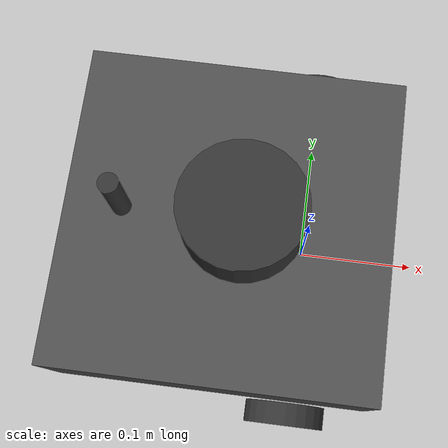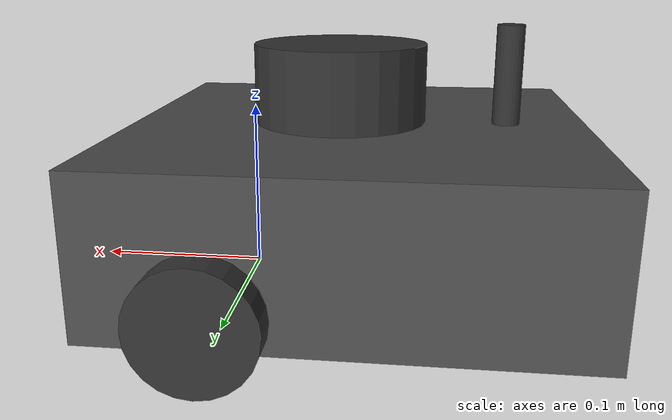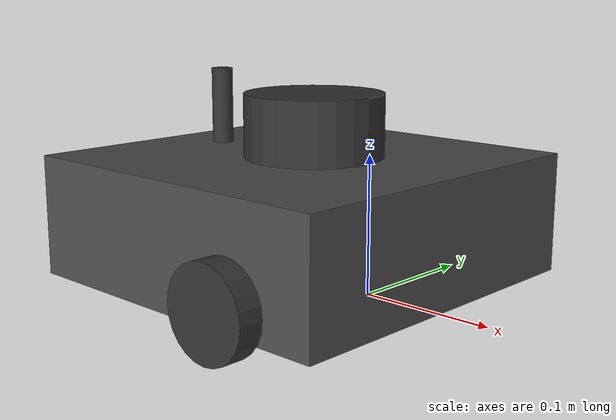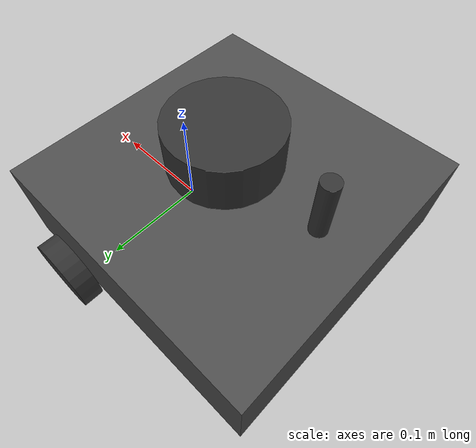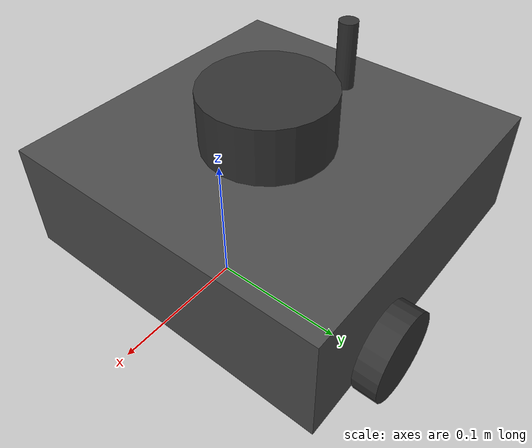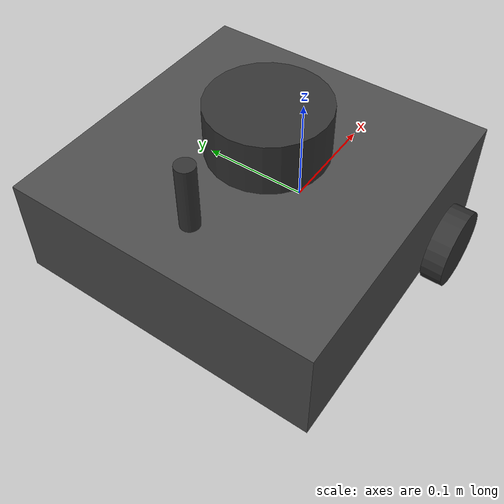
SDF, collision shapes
<?xml version="1.0" ?>
<sdf version="1.5">
  <model name="tbot_wf">
  <pose>0.0 0.0 0.0 0.0 0.0 0.0</pose>

    <link name="base_footprint"/>

    <link name="base_link">

      <inertial>
        <pose>-0.064 0 0.048 0 0 0</pose>
        <inertia>
          <ixx>4.2111447e-02</ixx>
          <ixy>0</ixy>
          <ixz>0</ixz>
          <iyy>4.2111447e-02</iyy>
          <iyz>0</iyz>
          <izz>7.5254874e-02</izz>
        </inertia>
        <mass>1.3729096e+00</mass>
      </inertial>

      <collision name="base_collision">
        <pose>-0.064 0 0.048 0 0 0</pose>
        <geometry>
          <box>
            <size>0.265 0.265 0.089</size>
          </box>
        </geometry>
      </collision>

      <visual name="base_visual">
        <pose>-0.064 0 0 0 0 0</pose>
        <geometry>
          <mesh>
            <uri>model://turtlebot3_common/meshes/bases/waffle_base.stl</uri>
            <scale>0.001 0.001 0.001</scale>
          </mesh>
        </geometry>
        <material>
          <ambient>0.3 0.3 0.3 1.0</ambient>
          <diffuse>0.3 0.3 0.3 1.0</diffuse>
        </material>
      </visual>
    </link>

    <link name="imu_link">
      <sensor name="tb3_imu" type="imu">
        <always_on>true</always_on>
        <update_rate>200</update_rate>
        <imu>
          <angular_velocity>
            <x>
              <noise type="gaussian">
                <mean>0.0</mean>
                <stddev>2e-4</stddev>
              </noise>
            </x>
            <y>
              <noise type="gaussian">
                <mean>0.0</mean>
                <stddev>2e-4</stddev>
              </noise>
            </y>
            <z>
              <noise type="gaussian">
                <mean>0.0</mean>
                <stddev>2e-4</stddev>
              </noise>
            </z>
          </angular_velocity>
          <linear_acceleration>
            <x>
              <noise type="gaussian">
                <mean>0.0</mean>
                <stddev>1.7e-2</stddev>
              </noise>
            </x>
            <y>
              <noise type="gaussian">
                <mean>0.0</mean>
                <stddev>1.7e-2</stddev>
              </noise>
            </y>
            <z>
              <noise type="gaussian">
                <mean>0.0</mean>
                <stddev>1.7e-2</stddev>
              </noise>
            </z>
          </linear_acceleration>
        </imu>
        <plugin name="tbot_imu" filename="libgazebo_ros_imu_sensor.so">
          <ros>
            <remapping>~/out:=imu</remapping>
          </ros>
        </plugin>
      </sensor>
    </link>

    <link name="base_scan">
      <inertial>
        <pose>-0.052 0 0.111 0 0 0</pose>
        <inertia>
          <ixx>0.001</ixx>
          <ixy>0.000</ixy>
          <ixz>0.000</ixz>
          <iyy>0.001</iyy>
          <iyz>0.000</iyz>
          <izz>0.001</izz>
        </inertia>
        <mass>0.114</mass>
      </inertial>

      <collision name="lidar_sensor_collision">
        <pose>-0.052 0 0.111 0 0 0</pose>
        <geometry>
          <cylinder>
            <radius>0.0508</radius>
            <length>0.055</length>
          </cylinder>
        </geometry>
      </collision>

      <visual name="lidar_sensor_visual">
        <pose>-0.064 0 0.121 0 0 0</pose>
        <geometry>
          <mesh>
            <uri>model://turtlebot3_common/meshes/sensors/lds.stl</uri>
            <scale>0.001 0.001 0.001</scale>
          </mesh>
        </geometry>
        <material>
          <ambient>0.2 0.2 0.2 1.0</ambient>
          <diffuse>0.2 0.2 0.2 1.0</diffuse>
        </material>
      </visual>

      <sensor name="hls_lfcd_lds" type="ray">
        <always_on>true</always_on>
        <visualize>true</visualize>
        <pose>-0.064 0 0.121 0 0 0</pose>
        <update_rate>5</update_rate>
        <ray>
          <scan>
            <horizontal>
              <samples>360</samples>
              <resolution>1.000000</resolution>
              <min_angle>0.000000</min_angle>
              <max_angle>6.280000</max_angle>
            </horizontal>
          </scan>
          <range>
            <min>0.120000</min>
            <max>3.5</max>
            <resolution>0.015000</resolution>
          </range>
          <noise>
            <type>gaussian</type>
            <mean>0.0</mean>
            <stddev>0.01</stddev>
          </noise>
        </ray>
        <plugin name="tbot_laserscan" filename="libgazebo_ros_ray_sensor.so">
          <ros>
            <remapping>~/out:=scan</remapping>
          </ros>
          <output_type>sensor_msgs/LaserScan</output_type>
          <frame_name>base_scan</frame_name>
        </plugin>
      </sensor>
    </link>

    <link name="wheel_left_link">

      <inertial>
        <pose>0.0 0.144 0.023 -1.57 0 0</pose>
        <inertia>
          <ixx>1.1175580e-05</ixx>
          <ixy>-4.2369783e-11</ixy>
          <ixz>-5.9381719e-09</ixz>
          <iyy>1.1192413e-05</iyy>
          <iyz>-1.4400107e-11</iyz>
          <izz>2.0712558e-05</izz>
        </inertia>
        <mass>0.1</mass>
      </inertial>

      <collision name="wheel_left_collision">
        <pose>0.0 0.144 0.023 -1.57 0 0</pose>
        <geometry>
          <cylinder>
            <radius>0.033</radius>
            <length>0.018</length>
          </cylinder>
        </geometry>
        <surface>
          <!-- This friction pamareter don't contain reliable data!! -->
          <friction>
            <ode>
              <mu>100000.0</mu>
              <mu2>100000.0</mu2>
              <fdir1>0 0 0</fdir1>
              <slip1>0.0</slip1>
              <slip2>0.0</slip2>
            </ode>
          </friction>
          <contact>
            <ode>
              <soft_cfm>0</soft_cfm>
              <soft_erp>0.2</soft_erp>
              <kp>1e+5</kp>
              <kd>1</kd>
              <max_vel>0.01</max_vel>
              <min_depth>0.001</min_depth>
            </ode>
          </contact>
        </surface>
      </collision>

      <visual name="wheel_left_visual">
        <pose>0.0 0.144 0.023 0 0 0</pose>
        <geometry>
          <mesh>
            <uri>model://turtlebot3_common/meshes/wheels/right_tire.stl</uri>
            <scale>0.001 0.001 0.001</scale>
          </mesh>
        </geometry>
        <material>
          <ambient>0.2 0.2 0.2 1.0</ambient>
          <diffuse>0.2 0.2 0.2 1.0</diffuse>
        </material>
      </visual>
    </link>

    <link name="wheel_right_link">

      <inertial>
        <pose>0.0 -0.144 0.023 -1.57 0 0</pose>
        <inertia>
          <ixx>1.1175580e-05</ixx>
          <ixy>-4.2369783e-11</ixy>
          <ixz>-5.9381719e-09</ixz>
          <iyy>1.1192413e-05</iyy>
          <iyz>-1.4400107e-11</iyz>
          <izz>2.0712558e-05</izz>
        </inertia>
        <mass>0.1</mass>
      </inertial>

      <collision name="wheel_right_collision">
        <pose>0.0 -0.144 0.023 -1.57 0 0</pose>
        <geometry>
          <cylinder>
            <radius>0.033</radius>
            <length>0.018</length>
          </cylinder>
        </geometry>
        <surface>
          <!-- This friction pamareter don't contain reliable data!! -->
          <friction>
            <ode>
              <mu>100000.0</mu>
              <mu2>100000.0</mu2>
              <fdir1>0 0 0</fdir1>
              <slip1>0.0</slip1>
              <slip2>0.0</slip2>
            </ode>
          </friction>
          <contact>
            <ode>
              <soft_cfm>0</soft_cfm>
              <soft_erp>0.2</soft_erp>
              <kp>1e+5</kp>
              <kd>1</kd>
              <max_vel>0.01</max_vel>
              <min_depth>0.001</min_depth>
            </ode>
          </contact>
        </surface>
      </collision>

      <visual name="wheel_right_visual">
        <pose>0.0 -0.144 0.023 0 0 0</pose>
        <geometry>
          <mesh>
            <uri>model://turtlebot3_common/meshes/wheels/left_tire.stl</uri>
            <scale>0.001 0.001 0.001</scale>
          </mesh>
        </geometry>
        <material>
          <ambient>0.2 0.2 0.2 1.0</ambient>
          <diffuse>0.2 0.2 0.2 1.0</diffuse>
        </material>
      </visual>
    </link>

    <link name='caster_back_right_link'>
      <pose>-0.177 -0.064 -0.004 -1.57 0 0</pose>
      <inertial>
        <mass>0.001</mass>
        <inertia>
          <ixx>0.00001</ixx>
          <ixy>0.000</ixy>
          <ixz>0.000</ixz>
          <iyy>0.00001</iyy>
          <iyz>0.000</iyz>
          <izz>0.00001</izz>
        </inertia>
      </inertial>
      <collision name='collision'>
        <geometry>
          <sphere>
            <radius>0.005000</radius>
          </sphere>
        </geometry>
        <surface>
          <contact>
            <ode>
              <soft_cfm>0</soft_cfm>
              <soft_erp>0.2</soft_erp>
              <kp>1e+5</kp>
              <kd>1</kd>
              <max_vel>0.01</max_vel>
              <min_depth>0.001</min_depth>
            </ode>
          </contact>
        </surface>
      </collision>
    </link>

    <link name='caster_back_left_link'>
      <pose>-0.177 0.064 -0.004 -1.57 0 0</pose>
      <inertial>
        <mass>0.001</mass>
        <inertia>
          <ixx>0.00001</ixx>
          <ixy>0.000</ixy>
          <ixz>0.000</ixz>
          <iyy>0.00001</iyy>
          <iyz>0.000</iyz>
          <izz>0.00001</izz>
        </inertia>
      </inertial>
      <collision name='collision'>
        <geometry>
          <sphere>
            <radius>0.005000</radius>
          </sphere>
        </geometry>
        <surface>
          <contact>
            <ode>
              <soft_cfm>0</soft_cfm>
              <soft_erp>0.2</soft_erp>
              <kp>1e+5</kp>
              <kd>1</kd>
              <max_vel>0.01</max_vel>
              <min_depth>0.001</min_depth>
            </ode>
          </contact>
        </surface>
      </collision>
    </link>

    <link name="camera_link"/>

    <link name="camera_depth_rgb_frame">

      <pose>0.069 -0.047 0.107 0 0 0</pose>
      <inertial>
        <inertia>
          <ixx>0.001</ixx>
          <ixy>0.000</ixy>
          <ixz>0.000</ixz>
          <iyy>0.001</iyy>
          <iyz>0.000</iyz>
          <izz>0.001</izz>
        </inertia>
        <mass>0.035</mass>
      </inertial>

      <!-- depth camera sensor -->
      <sensor name="depth_rgb_camera" type="depth">
        <always_on>true</always_on>
        <visualize>true</visualize>
        <update_rate>30</update_rate>

        <camera name="intel_realsense_r200_depth">
          <horizontal_fov>1.02974</horizontal_fov>
          <image>
            <width>640</width>
            <height>480</height>
            <format>R8G8B8</format> <!-- color image for visualization -->
          </image>
          <clip>
            <near>0.02</near>
            <far>10.0</far>
          </clip>
          <noise>
            <type>gaussian</type>
            <mean>0.0</mean>
            <stddev>0.007</stddev>
          </noise>
        </camera>

        <plugin name="depth_rgb_camera_controller" filename="libgazebo_ros_camera.so">
          <ros>
            <!-- Use remappings instead of old *_TopicName tags in ROS 2 -->
            <!-- Example topics: -->
          </ros>

          <camera_name>camera</camera_name>
          <frame_name>camera_rgb_frame</frame_name>

          <!-- depth-specific settings -->
          <hack_baseline>0.0</hack_baseline>
          <min_depth>0.02</min_depth>
          <max_depth>10.0</max_depth>
        </plugin>
      </sensor>
    </link>

    <joint name="base_joint" type="fixed">
      <parent>base_footprint</parent>
      <child>base_link</child>
      <pose>0.0 0.0 0.010 0 0 0</pose>
    </joint>

    <joint name="wheel_left_joint" type="revolute">
      <parent>base_link</parent>
      <child>wheel_left_link</child>
      <pose>0.0 0.144 0.023 -1.57 0 0</pose>
      <axis>
        <xyz>0 0 1</xyz>
      </axis>
    </joint>

    <joint name="wheel_right_joint" type="revolute">
      <parent>base_link</parent>
      <child>wheel_right_link</child>
      <pose>0.0 -0.144 0.023 -1.57 0 0</pose>
      <axis>
        <xyz>0 0 1</xyz>
      </axis>
    </joint>

    <joint name='caster_back_right_joint' type='ball'>
      <parent>base_link</parent>
      <child>caster_back_right_link</child>
    </joint>

    <joint name='caster_back_left_joint' type='ball'>
      <parent>base_link</parent>
      <child>caster_back_left_link</child>
    </joint>

    <joint name="imu_joint" type="fixed">
      <parent>base_link</parent>
      <child>imu_link</child>
      <pose>-0.032 0 0.068 0 0 0</pose>
      <axis>
        <xyz>0 0 1</xyz>h
      </axis>
    </joint>

    <joint name="lidar_joint" type="fixed">
      <parent>base_link</parent>
      <child>base_scan</child>
      <pose>-0.064 0 0.121 0 0 0</pose>
      <axis>
        <xyz>0 0 1</xyz>
      </axis>
    </joint>

    <joint name="camera_joint" type="fixed">
      <parent>base_link</parent>
      <child>camera_link</child>
      <pose>0.064 -0.065 0.094 0 0 0</pose>
      <axis>
        <xyz>0 0 1</xyz>
      </axis>
    </joint>

    <joint name="camera_depth_rgb_joint" type="fixed">
      <parent>camera_link</parent>
      <child>camera_depth_rgb_frame</child>
      <pose>0.005 0.018 0.013 0 0 0</pose>
      <axis>
        <xyz>0 0 1</xyz>
      </axis>
    </joint>

    <link name="camera_pole_link">
      <pose>-0.15 0 0.1 0 0 0</pose>
      <inertial>
        <inertia>
          <ixx>0.001</ixx>
          <ixy>0</ixy>
          <ixz>0</ixz>
          <iyy>0.001</iyy>
          <iyz>0</iyz>
          <izz>0.0001</izz>
        </inertia>
        <mass>0.1</mass>
      </inertial>
      <collision name="camera_pole_collision">
        <geometry>
          <cylinder>
            <radius>0.008</radius>
            <length>0.1</length>
          </cylinder>
        </geometry>
      </collision>
      <visual name="camera_pole_visual">
        <geometry>
          <cylinder>
            <radius>0.008</radius>
            <length>0.1</length>
          </cylinder>
        </geometry>
        <material>
          <ambient>0.2 0.2 0.2 1.0</ambient>
          <diffuse>0.2 0.2 0.2 1.0</diffuse>
        </material>
      </visual>
    </link>

    <joint name="camera_pole_joint" type="fixed">
      <parent>base_link</parent>
      <child>camera_pole_link</child>
      <pose>-0.17 0 0.15 0 0 0</pose>
      <axis>
        <xyz>0 0 1</xyz>
      </axis>
    </joint>

    <plugin name="tbot_diff_drive" filename="libgazebo_ros_diff_drive.so">

      <ros>
        <remapping>cmd_vel:=tbot_base/cmd_vel</remapping>
      </ros>

      <update_rate>30</update_rate>

      <!-- wheels -->
      <left_joint>wheel_left_joint</left_joint>
      <right_joint>wheel_right_joint</right_joint>

      <!-- kinematics -->
      <wheel_separation>0.287</wheel_separation>
      <wheel_diameter>0.066</wheel_diameter>

      <!-- limits -->
      <max_wheel_torque>20</max_wheel_torque>
      <max_wheel_acceleration>1.0</max_wheel_acceleration>

      <!-- output -->
      <publish_odom>true</publish_odom>
      <publish_odom_tf>true</publish_odom_tf>
      <publish_wheel_tf>false</publish_wheel_tf>

      <odometry_topic>odom</odometry_topic>
      <odometry_frame>odom</odometry_frame>
      <robot_base_frame>base_footprint</robot_base_frame>

    </plugin>

    <plugin name="tbot_joint_state" filename="libgazebo_ros_joint_state_publisher.so">
      <ros>
        <remapping>~/out:=joint_states</remapping>
      </ros>
      <update_rate>30</update_rate>
      <joint_name>wheel_left_joint</joint_name>
      <joint_name>wheel_right_joint</joint_name>
    </plugin>

  </model>
</sdf>
